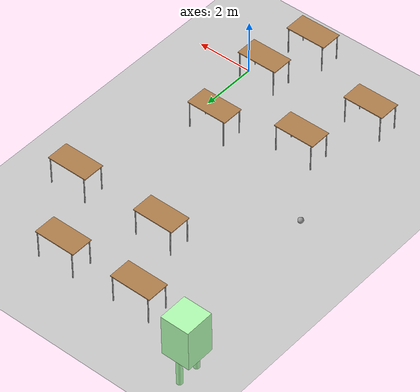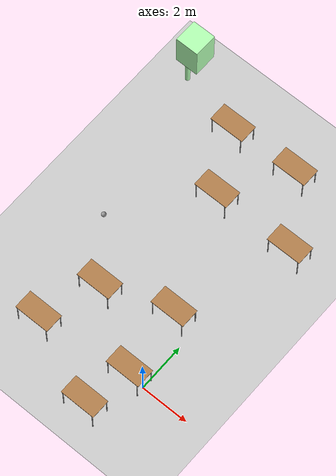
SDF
<sdf version="1.6">
 <world name="default">
  <model name="ground_plane">
   <static>1</static>
   <link name="link">
    <collision name="collision">
     <geometry><plane><normal>0 0 1</normal><size>100 100</size></plane></geometry>
     <surface><friction><ode><mu>100</mu><mu2>50</mu2></ode></friction></surface>
    </collision>
    <visual name="visual">
     <cast_shadows>0</cast_shadows>
     <geometry><plane><normal>0 0 1</normal><size>100 100</size></plane></geometry>
     <material>
      <script><uri>file://media/materials/scripts/gazebo.material</uri><name>Gazebo/Grey</name></script>
     </material>
    </visual>
   </link>
  </model>
  <model name="table">
   <static>1</static>
   <link name="link">
    <collision name="surface">
     <pose>0 0 1 0 -0 0</pose>
     <geometry><box><size>1.5 0.8 0.03</size></box></geometry>
     <surface><friction><ode><mu>0.6</mu><mu2>0.6</mu2></ode></friction></surface>
    </collision>
    <visual name="visual1">
     <pose>0 0 1 0 -0 0</pose>
     <geometry><box><size>1.5 0.8 0.03</size></box></geometry>
     <material>
      <script><uri>file://media/materials/scripts/gazebo.material</uri><name>Gazebo/Wood</name></script>
     </material>
    </visual>
    <collision name="front_left_leg">
     <pose>0.68 0.38 0.5 0 -0 0</pose>
     <geometry><cylinder><radius>0.02</radius><length>1</length></cylinder></geometry>
    </collision>
    <visual name="front_left_leg">
     <pose>0.68 0.38 0.5 0 -0 0</pose>
     <geometry><cylinder><radius>0.02</radius><length>1</length></cylinder></geometry>
     <material>
      <script><uri>file://media/materials/scripts/gazebo.material</uri><name>Gazebo/Grey</name></script>
     </material>
    </visual>
    <collision name="front_right_leg">
     <pose>0.68 -0.38 0.5 0 -0 0</pose>
     <geometry><cylinder><radius>0.02</radius><length>1</length></cylinder></geometry>
    </collision>
    <visual name="front_right_leg">
     <pose>0.68 -0.38 0.5 0 -0 0</pose>
     <geometry><cylinder><radius>0.02</radius><length>1</length></cylinder></geometry>
     <material>
      <script><uri>file://media/materials/scripts/gazebo.material</uri><name>Gazebo/Grey</name></script>
     </material>
    </visual>
    <collision name="back_right_leg">
     <pose>-0.68 -0.38 0.5 0 -0 0</pose>
     <geometry><cylinder><radius>0.02</radius><length>1</length></cylinder></geometry>
    </collision>
    <visual name="back_right_leg">
     <pose>-0.68 -0.38 0.5 0 -0 0</pose>
     <geometry><cylinder><radius>0.02</radius><length>1</length></cylinder></geometry>
     <material>
      <script><uri>file://media/materials/scripts/gazebo.material</uri><name>Gazebo/Grey</name></script>
     </material>
    </visual>
    <collision name="back_left_leg">
     <pose>-0.68 0.38 0.5 0 -0 0</pose>
     <geometry><cylinder><radius>0.02</radius><length>1</length></cylinder></geometry>
    </collision>
    <visual name="back_left_leg">
     <pose>-0.68 0.38 0.5 0 -0 0</pose>
     <geometry><cylinder><radius>0.02</radius><length>1</length></cylinder></geometry>
     <material>
      <script><uri>file://media/materials/scripts/gazebo.material</uri><name>Gazebo/Grey</name></script>
     </material>
    </visual>
   </link>
   <pose>-4.01505 9.79336 0 0 -0 0</pose>
  </model>
  <model name="table_0">
   <static>1</static>
   <link name="link">
    <collision name="surface">
     <pose>0 0 1 0 -0 0</pose>
     <geometry><box><size>1.5 0.8 0.03</size></box></geometry>
     <surface><friction><ode><mu>0.6</mu><mu2>0.6</mu2></ode></friction></surface>
    </collision>
    <visual name="visual1">
     <pose>0 0 1 0 -0 0</pose>
     <geometry><box><size>1.5 0.8 0.03</size></box></geometry>
     <material>
      <script><uri>file://media/materials/scripts/gazebo.material</uri><name>Gazebo/Wood</name></script>
     </material>
    </visual>
    <collision name="front_left_leg">
     <pose>0.68 0.38 0.5 0 -0 0</pose>
     <geometry><cylinder><radius>0.02</radius><length>1</length></cylinder></geometry>
    </collision>
    <visual name="front_left_leg">
     <pose>0.68 0.38 0.5 0 -0 0</pose>
     <geometry><cylinder><radius>0.02</radius><length>1</length></cylinder></geometry>
     <material>
      <script><uri>file://media/materials/scripts/gazebo.material</uri><name>Gazebo/Grey</name></script>
     </material>
    </visual>
    <collision name="front_right_leg">
     <pose>0.68 -0.38 0.5 0 -0 0</pose>
     <geometry><cylinder><radius>0.02</radius><length>1</length></cylinder></geometry>
    </collision>
    <visual name="front_right_leg">
     <pose>0.68 -0.38 0.5 0 -0 0</pose>
     <geometry><cylinder><radius>0.02</radius><length>1</length></cylinder></geometry>
     <material>
      <script><uri>file://media/materials/scripts/gazebo.material</uri><name>Gazebo/Grey</name></script>
     </material>
    </visual>
    <collision name="back_right_leg">
     <pose>-0.68 -0.38 0.5 0 -0 0</pose>
     <geometry><cylinder><radius>0.02</radius><length>1</length></cylinder></geometry>
    </collision>
    <visual name="back_right_leg">
     <pose>-0.68 -0.38 0.5 0 -0 0</pose>
     <geometry><cylinder><radius>0.02</radius><length>1</length></cylinder></geometry>
     <material>
      <script><uri>file://media/materials/scripts/gazebo.material</uri><name>Gazebo/Grey</name></script>
     </material>
    </visual>
    <collision name="back_left_leg">
     <pose>-0.68 0.38 0.5 0 -0 0</pose>
     <geometry><cylinder><radius>0.02</radius><length>1</length></cylinder></geometry>
    </collision>
    <visual name="back_left_leg">
     <pose>-0.68 0.38 0.5 0 -0 0</pose>
     <geometry><cylinder><radius>0.02</radius><length>1</length></cylinder></geometry>
     <material>
      <script><uri>file://media/materials/scripts/gazebo.material</uri><name>Gazebo/Grey</name></script>
     </material>
    </visual>
   </link>
   <pose>-1.14688 9.87615 0 0 -0 0</pose>
  </model>
  <model name="table_1">
   <static>1</static>
   <link name="link">
    <collision name="surface">
     <pose>0 0 1 0 -0 0</pose>
     <geometry><box><size>1.5 0.8 0.03</size></box></geometry>
     <surface><friction><ode><mu>0.6</mu><mu2>0.6</mu2></ode></friction></surface>
    </collision>
    <visual name="visual1">
     <pose>0 0 1 0 -0 0</pose>
     <geometry><box><size>1.5 0.8 0.03</size></box></geometry>
     <material>
      <script><uri>file://media/materials/scripts/gazebo.material</uri><name>Gazebo/Wood</name></script>
     </material>
    </visual>
    <collision name="front_left_leg">
     <pose>0.68 0.38 0.5 0 -0 0</pose>
     <geometry><cylinder><radius>0.02</radius><length>1</length></cylinder></geometry>
    </collision>
    <visual name="front_left_leg">
     <pose>0.68 0.38 0.5 0 -0 0</pose>
     <geometry><cylinder><radius>0.02</radius><length>1</length></cylinder></geometry>
     <material>
      <script><uri>file://media/materials/scripts/gazebo.material</uri><name>Gazebo/Grey</name></script>
     </material>
    </visual>
    <collision name="front_right_leg">
     <pose>0.68 -0.38 0.5 0 -0 0</pose>
     <geometry><cylinder><radius>0.02</radius><length>1</length></cylinder></geometry>
    </collision>
    <visual name="front_right_leg">
     <pose>0.68 -0.38 0.5 0 -0 0</pose>
     <geometry><cylinder><radius>0.02</radius><length>1</length></cylinder></geometry>
     <material>
      <script><uri>file://media/materials/scripts/gazebo.material</uri><name>Gazebo/Grey</name></script>
     </material>
    </visual>
    <collision name="back_right_leg">
     <pose>-0.68 -0.38 0.5 0 -0 0</pose>
     <geometry><cylinder><radius>0.02</radius><length>1</length></cylinder></geometry>
    </collision>
    <visual name="back_right_leg">
     <pose>-0.68 -0.38 0.5 0 -0 0</pose>
     <geometry><cylinder><radius>0.02</radius><length>1</length></cylinder></geometry>
     <material>
      <script><uri>file://media/materials/scripts/gazebo.material</uri><name>Gazebo/Grey</name></script>
     </material>
    </visual>
    <collision name="back_left_leg">
     <pose>-0.68 0.38 0.5 0 -0 0</pose>
     <geometry><cylinder><radius>0.02</radius><length>1</length></cylinder></geometry>
    </collision>
    <visual name="back_left_leg">
     <pose>-0.68 0.38 0.5 0 -0 0</pose>
     <geometry><cylinder><radius>0.02</radius><length>1</length></cylinder></geometry>
     <material>
      <script><uri>file://media/materials/scripts/gazebo.material</uri><name>Gazebo/Grey</name></script>
     </material>
    </visual>
   </link>
   <pose>-2.73953 7.35385 0 0 -0 0</pose>
  </model>
  <model name="table_2">
   <static>1</static>
   <link name="link">
    <collision name="surface">
     <pose>0 0 1 0 -0 0</pose>
     <geometry><box><size>1.5 0.8 0.03</size></box></geometry>
     <surface><friction><ode><mu>0.6</mu><mu2>0.6</mu2></ode></friction></surface>
    </collision>
    <visual name="visual1">
     <pose>0 0 1 0 -0 0</pose>
     <geometry><box><size>1.5 0.8 0.03</size></box></geometry>
     <material>
      <script><uri>file://media/materials/scripts/gazebo.material</uri><name>Gazebo/Wood</name></script>
     </material>
    </visual>
    <collision name="front_left_leg">
     <pose>0.68 0.38 0.5 0 -0 0</pose>
     <geometry><cylinder><radius>0.02</radius><length>1</length></cylinder></geometry>
    </collision>
    <visual name="front_left_leg">
     <pose>0.68 0.38 0.5 0 -0 0</pose>
     <geometry><cylinder><radius>0.02</radius><length>1</length></cylinder></geometry>
     <material>
      <script><uri>file://media/materials/scripts/gazebo.material</uri><name>Gazebo/Grey</name></script>
     </material>
    </visual>
    <collision name="front_right_leg">
     <pose>0.68 -0.38 0.5 0 -0 0</pose>
     <geometry><cylinder><radius>0.02</radius><length>1</length></cylinder></geometry>
    </collision>
    <visual name="front_right_leg">
     <pose>0.68 -0.38 0.5 0 -0 0</pose>
     <geometry><cylinder><radius>0.02</radius><length>1</length></cylinder></geometry>
     <material>
      <script><uri>file://media/materials/scripts/gazebo.material</uri><name>Gazebo/Grey</name></script>
     </material>
    </visual>
    <collision name="back_right_leg">
     <pose>-0.68 -0.38 0.5 0 -0 0</pose>
     <geometry><cylinder><radius>0.02</radius><length>1</length></cylinder></geometry>
    </collision>
    <visual name="back_right_leg">
     <pose>-0.68 -0.38 0.5 0 -0 0</pose>
     <geometry><cylinder><radius>0.02</radius><length>1</length></cylinder></geometry>
     <material>
      <script><uri>file://media/materials/scripts/gazebo.material</uri><name>Gazebo/Grey</name></script>
     </material>
    </visual>
    <collision name="back_left_leg">
     <pose>-0.68 0.38 0.5 0 -0 0</pose>
     <geometry><cylinder><radius>0.02</radius><length>1</length></cylinder></geometry>
    </collision>
    <visual name="back_left_leg">
     <pose>-0.68 0.38 0.5 0 -0 0</pose>
     <geometry><cylinder><radius>0.02</radius><length>1</length></cylinder></geometry>
     <material>
      <script><uri>file://media/materials/scripts/gazebo.material</uri><name>Gazebo/Grey</name></script>
     </material>
    </visual>
   </link>
   <pose>0.676535 7.34865 0 0 -0 0</pose>
  </model>
  <model name="table_3">
   <static>1</static>
   <link name="link">
    <collision name="surface">
     <pose>0 0 1 0 -0 0</pose>
     <geometry><box><size>1.5 0.8 0.03</size></box></geometry>
     <surface><friction><ode><mu>0.6</mu><mu2>0.6</mu2></ode></friction></surface>
    </collision>
    <visual name="visual1">
     <pose>0 0 1 0 -0 0</pose>
     <geometry><box><size>1.5 0.8 0.03</size></box></geometry>
     <material>
      <script><uri>file://media/materials/scripts/gazebo.material</uri><name>Gazebo/Wood</name></script>
     </material>
    </visual>
    <collision name="front_left_leg">
     <pose>0.68 0.38 0.5 0 -0 0</pose>
     <geometry><cylinder><radius>0.02</radius><length>1</length></cylinder></geometry>
    </collision>
    <visual name="front_left_leg">
     <pose>0.68 0.38 0.5 0 -0 0</pose>
     <geometry><cylinder><radius>0.02</radius><length>1</length></cylinder></geometry>
     <material>
      <script><uri>file://media/materials/scripts/gazebo.material</uri><name>Gazebo/Grey</name></script>
     </material>
    </visual>
    <collision name="front_right_leg">
     <pose>0.68 -0.38 0.5 0 -0 0</pose>
     <geometry><cylinder><radius>0.02</radius><length>1</length></cylinder></geometry>
    </collision>
    <visual name="front_right_leg">
     <pose>0.68 -0.38 0.5 0 -0 0</pose>
     <geometry><cylinder><radius>0.02</radius><length>1</length></cylinder></geometry>
     <material>
      <script><uri>file://media/materials/scripts/gazebo.material</uri><name>Gazebo/Grey</name></script>
     </material>
    </visual>
    <collision name="back_right_leg">
     <pose>-0.68 -0.38 0.5 0 -0 0</pose>
     <geometry><cylinder><radius>0.02</radius><length>1</length></cylinder></geometry>
    </collision>
    <visual name="back_right_leg">
     <pose>-0.68 -0.38 0.5 0 -0 0</pose>
     <geometry><cylinder><radius>0.02</radius><length>1</length></cylinder></geometry>
     <material>
      <script><uri>file://media/materials/scripts/gazebo.material</uri><name>Gazebo/Grey</name></script>
     </material>
    </visual>
    <collision name="back_left_leg">
     <pose>-0.68 0.38 0.5 0 -0 0</pose>
     <geometry><cylinder><radius>0.02</radius><length>1</length></cylinder></geometry>
    </collision>
    <visual name="back_left_leg">
     <pose>-0.68 0.38 0.5 0 -0 0</pose>
     <geometry><cylinder><radius>0.02</radius><length>1</length></cylinder></geometry>
     <material>
      <script><uri>file://media/materials/scripts/gazebo.material</uri><name>Gazebo/Grey</name></script>
     </material>
    </visual>
   </link>
   <pose>-0.919564 2.77601 0 0 -0 0</pose>
  </model>
  <model name="table_4">
   <static>1</static>
   <link name="link">
    <collision name="surface">
     <pose>0 0 1 0 -0 0</pose>
     <geometry><box><size>1.5 0.8 0.03</size></box></geometry>
     <surface><friction><ode><mu>0.6</mu><mu2>0.6</mu2></ode></friction></surface>
    </collision>
    <visual name="visual1">
     <pose>0 0 1 0 -0 0</pose>
     <geometry><box><size>1.5 0.8 0.03</size></box></geometry>
     <material>
      <script><uri>file://media/materials/scripts/gazebo.material</uri><name>Gazebo/Wood</name></script>
     </material>
    </visual>
    <collision name="front_left_leg">
     <pose>0.68 0.38 0.5 0 -0 0</pose>
     <geometry><cylinder><radius>0.02</radius><length>1</length></cylinder></geometry>
    </collision>
    <visual name="front_left_leg">
     <pose>0.68 0.38 0.5 0 -0 0</pose>
     <geometry><cylinder><radius>0.02</radius><length>1</length></cylinder></geometry>
     <material>
      <script><uri>file://media/materials/scripts/gazebo.material</uri><name>Gazebo/Grey</name></script>
     </material>
    </visual>
    <collision name="front_right_leg">
     <pose>0.68 -0.38 0.5 0 -0 0</pose>
     <geometry><cylinder><radius>0.02</radius><length>1</length></cylinder></geometry>
    </collision>
    <visual name="front_right_leg">
     <pose>0.68 -0.38 0.5 0 -0 0</pose>
     <geometry><cylinder><radius>0.02</radius><length>1</length></cylinder></geometry>
     <material>
      <script><uri>file://media/materials/scripts/gazebo.material</uri><name>Gazebo/Grey</name></script>
     </material>
    </visual>
    <collision name="back_right_leg">
     <pose>-0.68 -0.38 0.5 0 -0 0</pose>
     <geometry><cylinder><radius>0.02</radius><length>1</length></cylinder></geometry>
    </collision>
    <visual name="back_right_leg">
     <pose>-0.68 -0.38 0.5 0 -0 0</pose>
     <geometry><cylinder><radius>0.02</radius><length>1</length></cylinder></geometry>
     <material>
      <script><uri>file://media/materials/scripts/gazebo.material</uri><name>Gazebo/Grey</name></script>
     </material>
    </visual>
    <collision name="back_left_leg">
     <pose>-0.68 0.38 0.5 0 -0 0</pose>
     <geometry><cylinder><radius>0.02</radius><length>1</length></cylinder></geometry>
    </collision>
    <visual name="back_left_leg">
     <pose>-0.68 0.38 0.5 0 -0 0</pose>
     <geometry><cylinder><radius>0.02</radius><length>1</length></cylinder></geometry>
     <material>
      <script><uri>file://media/materials/scripts/gazebo.material</uri><name>Gazebo/Grey</name></script>
     </material>
    </visual>
   </link>
   <pose>-4.45906 -0.485372 0 0 -0 0</pose>
  </model>
  <model name="table_5">
   <static>1</static>
   <link name="link">
    <collision name="surface">
     <pose>0 0 1 0 -0 0</pose>
     <geometry><box><size>1.5 0.8 0.03</size></box></geometry>
     <surface><friction><ode><mu>0.6</mu><mu2>0.6</mu2></ode></friction></surface>
    </collision>
    <visual name="visual1">
     <pose>0 0 1 0 -0 0</pose>
     <geometry><box><size>1.5 0.8 0.03</size></box></geometry>
     <material>
      <script><uri>file://media/materials/scripts/gazebo.material</uri><name>Gazebo/Wood</name></script>
     </material>
    </visual>
    <collision name="front_left_leg">
     <pose>0.68 0.38 0.5 0 -0 0</pose>
     <geometry><cylinder><radius>0.02</radius><length>1</length></cylinder></geometry>
    </collision>
    <visual name="front_left_leg">
     <pose>0.68 0.38 0.5 0 -0 0</pose>
     <geometry><cylinder><radius>0.02</radius><length>1</length></cylinder></geometry>
     <material>
      <script><uri>file://media/materials/scripts/gazebo.material</uri><name>Gazebo/Grey</name></script>
     </material>
    </visual>
    <collision name="front_right_leg">
     <pose>0.68 -0.38 0.5 0 -0 0</pose>
     <geometry><cylinder><radius>0.02</radius><length>1</length></cylinder></geometry>
    </collision>
    <visual name="front_right_leg">
     <pose>0.68 -0.38 0.5 0 -0 0</pose>
     <geometry><cylinder><radius>0.02</radius><length>1</length></cylinder></geometry>
     <material>
      <script><uri>file://media/materials/scripts/gazebo.material</uri><name>Gazebo/Grey</name></script>
     </material>
    </visual>
    <collision name="back_right_leg">
     <pose>-0.68 -0.38 0.5 0 -0 0</pose>
     <geometry><cylinder><radius>0.02</radius><length>1</length></cylinder></geometry>
    </collision>
    <visual name="back_right_leg">
     <pose>-0.68 -0.38 0.5 0 -0 0</pose>
     <geometry><cylinder><radius>0.02</radius><length>1</length></cylinder></geometry>
     <material>
      <script><uri>file://media/materials/scripts/gazebo.material</uri><name>Gazebo/Grey</name></script>
     </material>
    </visual>
    <collision name="back_left_leg">
     <pose>-0.68 0.38 0.5 0 -0 0</pose>
     <geometry><cylinder><radius>0.02</radius><length>1</length></cylinder></geometry>
    </collision>
    <visual name="back_left_leg">
     <pose>-0.68 0.38 0.5 0 -0 0</pose>
     <geometry><cylinder><radius>0.02</radius><length>1</length></cylinder></geometry>
     <material>
      <script><uri>file://media/materials/scripts/gazebo.material</uri><name>Gazebo/Grey</name></script>
     </material>
    </visual>
   </link>
   <pose>-3.62568 1.87199 0 0 -0 0</pose>
  </model>
  <model name="table_6">
   <static>1</static>
   <link name="link">
    <collision name="surface">
     <pose>0 0 1 0 -0 0</pose>
     <geometry><box><size>1.5 0.8 0.03</size></box></geometry>
     <surface><friction><ode><mu>0.6</mu><mu2>0.6</mu2></ode></friction></surface>
    </collision>
    <visual name="visual1">
     <pose>0 0 1 0 -0 0</pose>
     <geometry><box><size>1.5 0.8 0.03</size></box></geometry>
     <material>
      <script><uri>file://media/materials/scripts/gazebo.material</uri><name>Gazebo/Wood</name></script>
     </material>
    </visual>
    <collision name="front_left_leg">
     <pose>0.68 0.38 0.5 0 -0 0</pose>
     <geometry><cylinder><radius>0.02</radius><length>1</length></cylinder></geometry>
    </collision>
    <visual name="front_left_leg">
     <pose>0.68 0.38 0.5 0 -0 0</pose>
     <geometry><cylinder><radius>0.02</radius><length>1</length></cylinder></geometry>
     <material>
      <script><uri>file://media/materials/scripts/gazebo.material</uri><name>Gazebo/Grey</name></script>
     </material>
    </visual>
    <collision name="front_right_leg">
     <pose>0.68 -0.38 0.5 0 -0 0</pose>
     <geometry><cylinder><radius>0.02</radius><length>1</length></cylinder></geometry>
    </collision>
    <visual name="front_right_leg">
     <pose>0.68 -0.38 0.5 0 -0 0</pose>
     <geometry><cylinder><radius>0.02</radius><length>1</length></cylinder></geometry>
     <material>
      <script><uri>file://media/materials/scripts/gazebo.material</uri><name>Gazebo/Grey</name></script>
     </material>
    </visual>
    <collision name="back_right_leg">
     <pose>-0.68 -0.38 0.5 0 -0 0</pose>
     <geometry><cylinder><radius>0.02</radius><length>1</length></cylinder></geometry>
    </collision>
    <visual name="back_right_leg">
     <pose>-0.68 -0.38 0.5 0 -0 0</pose>
     <geometry><cylinder><radius>0.02</radius><length>1</length></cylinder></geometry>
     <material>
      <script><uri>file://media/materials/scripts/gazebo.material</uri><name>Gazebo/Grey</name></script>
     </material>
    </visual>
    <collision name="back_left_leg">
     <pose>-0.68 0.38 0.5 0 -0 0</pose>
     <geometry><cylinder><radius>0.02</radius><length>1</length></cylinder></geometry>
    </collision>
    <visual name="back_left_leg">
     <pose>-0.68 0.38 0.5 0 -0 0</pose>
     <geometry><cylinder><radius>0.02</radius><length>1</length></cylinder></geometry>
     <material>
      <script><uri>file://media/materials/scripts/gazebo.material</uri><name>Gazebo/Grey</name></script>
     </material>
    </visual>
   </link>
   <pose>-0.637291 0.015745 0 0 -0 0</pose>
  </model>
  <model name="table_7">
   <static>1</static>
   <link name="link">
    <collision name="surface">
     <pose>0 0 1 0 -0 0</pose>
     <geometry><box><size>1.5 0.8 0.03</size></box></geometry>
     <surface><friction><ode><mu>0.6</mu><mu2>0.6</mu2></ode></friction></surface>
    </collision>
    <visual name="visual1">
     <pose>0 0 1 0 -0 0</pose>
     <geometry><box><size>1.5 0.8 0.03</size></box></geometry>
     <material>
      <script><uri>file://media/materials/scripts/gazebo.material</uri><name>Gazebo/Wood</name></script>
     </material>
    </visual>
    <collision name="front_left_leg">
     <pose>0.68 0.38 0.5 0 -0 0</pose>
     <geometry><cylinder><radius>0.02</radius><length>1</length></cylinder></geometry>
    </collision>
    <visual name="front_left_leg">
     <pose>0.68 0.38 0.5 0 -0 0</pose>
     <geometry><cylinder><radius>0.02</radius><length>1</length></cylinder></geometry>
     <material>
      <script><uri>file://media/materials/scripts/gazebo.material</uri><name>Gazebo/Grey</name></script>
     </material>
    </visual>
    <collision name="front_right_leg">
     <pose>0.68 -0.38 0.5 0 -0 0</pose>
     <geometry><cylinder><radius>0.02</radius><length>1</length></cylinder></geometry>
    </collision>
    <visual name="front_right_leg">
     <pose>0.68 -0.38 0.5 0 -0 0</pose>
     <geometry><cylinder><radius>0.02</radius><length>1</length></cylinder></geometry>
     <material>
      <script><uri>file://media/materials/scripts/gazebo.material</uri><name>Gazebo/Grey</name></script>
     </material>
    </visual>
    <collision name="back_right_leg">
     <pose>-0.68 -0.38 0.5 0 -0 0</pose>
     <geometry><cylinder><radius>0.02</radius><length>1</length></cylinder></geometry>
    </collision>
    <visual name="back_right_leg">
     <pose>-0.68 -0.38 0.5 0 -0 0</pose>
     <geometry><cylinder><radius>0.02</radius><length>1</length></cylinder></geometry>
     <material>
      <script><uri>file://media/materials/scripts/gazebo.material</uri><name>Gazebo/Grey</name></script>
     </material>
    </visual>
    <collision name="back_left_leg">
     <pose>-0.68 0.38 0.5 0 -0 0</pose>
     <geometry><cylinder><radius>0.02</radius><length>1</length></cylinder></geometry>
    </collision>
    <visual name="back_left_leg">
     <pose>-0.68 0.38 0.5 0 -0 0</pose>
     <geometry><cylinder><radius>0.02</radius><length>1</length></cylinder></geometry>
     <material>
      <script><uri>file://media/materials/scripts/gazebo.material</uri><name>Gazebo/Grey</name></script>
     </material>
    </visual>
   </link>
   <pose>-1.08143 -1.86938 0 0 -0 0</pose>
  </model>
  <model name="NewRobot_0">
   <link name="link_0">
    <pose>0.006667 0.013333 0.833333 0 -0 0</pose>
    <inertial>
     <mass>1</mass>
     <inertia>
      <ixx>0.166667</ixx>
      <ixy>0</ixy>
      <ixz>0</ixz>
      <iyy>0.166667</iyy>
      <iyz>0</iyz>
      <izz>0.166667</izz>
     </inertia>
    </inertial>
    <visual name="visual">
     <geometry><box><size>1 1 1.5</size></box></geometry>
     <material>
      <lighting>1</lighting>
      <script><uri>file://media/materials/scripts/gazebo.material</uri><name>Gazebo/Grey</name></script>
      <shader type="pixel"><normal_map>__default__</normal_map></shader>
      <ambient>0.3 0.3 0.3 1</ambient>
      <diffuse>0.7 1 0.7 1</diffuse>
      <specular>0.01 1 0.01 1</specular>
      <emissive>0 0 0 1</emissive>
     </material>
    </visual>
    <collision name="collision">
     <geometry><box><size>1 1 1.5</size></box></geometry>
     <surface>
      <friction>
       <ode><mu>1</mu><mu2>1</mu2><fdir1>0 0 0</fdir1><slip1>0</slip1><slip2>0</slip2></ode>
       <torsional>
        <coefficient>1</coefficient>
        <patch_radius>0</patch_radius>
        <surface_radius>0</surface_radius>
        <use_patch_radius>1</use_patch_radius>
        <ode><slip>0</slip></ode>
       </torsional>
      </friction>
      <bounce><restitution_coefficient>0</restitution_coefficient><threshold>1e+06</threshold></bounce>
      <contact>
       <collide_without_contact>0</collide_without_contact>
       <collide_without_contact_bitmask>1</collide_without_contact_bitmask>
       <collide_bitmask>1</collide_bitmask>
       <ode>
        <soft_cfm>0</soft_cfm>
        <soft_erp>0.2</soft_erp>
        <kp>1e+13</kp>
        <kd>1</kd>
        <max_vel>0.01</max_vel>
        <min_depth>0</min_depth>
       </ode>
       <bullet>
        <split_impulse>1</split_impulse>
        <split_impulse_penetration_threshold>-0.01</split_impulse_penetration_threshold>
        <soft_cfm>0</soft_cfm>
        <soft_erp>0.2</soft_erp>
        <kp>1e+13</kp>
        <kd>1</kd>
       </bullet>
      </contact>
     </surface>
    </collision>
   </link>
   <link name="link_1">
    <pose>-0.013333 0.373333 -0.416667 0 -0 0</pose>
    <inertial>
     <mass>1</mass>
     <inertia><ixx>0.145833</ixx><ixy>0</ixy><ixz>0</ixz><iyy>0.145833</iyy><iyz>0</iyz><izz>0.125</izz></inertia>
    </inertial>
    <visual name="visual">
     <geometry><cylinder><radius>0.1</radius><length>1</length></cylinder></geometry>
     <material>
      <lighting>1</lighting>
      <script><uri>file://media/materials/scripts/gazebo.material</uri><name>Gazebo/Grey</name></script>
      <shader type="pixel"><normal_map>__default__</normal_map></shader>
      <ambient>0.3 0.3 0.7 1</ambient>
      <diffuse>0.7 1 0.7 1</diffuse>
      <specular>0.01 1 0.5 1</specular>
      <emissive>0 1 0 1</emissive>
     </material>
    </visual>
    <collision name="collision">
     <geometry><cylinder><radius>0.1</radius><length>1</length></cylinder></geometry>
     <surface>
      <friction>
       <ode><mu>1</mu><mu2>1</mu2><fdir1>0 0 0</fdir1><slip1>0</slip1><slip2>0</slip2></ode>
       <torsional>
        <coefficient>1</coefficient>
        <patch_radius>0</patch_radius>
        <surface_radius>0</surface_radius>
        <use_patch_radius>1</use_patch_radius>
        <ode><slip>0</slip></ode>
       </torsional>
      </friction>
      <bounce><restitution_coefficient>0</restitution_coefficient><threshold>1e+06</threshold></bounce>
      <contact>
       <collide_without_contact>0</collide_without_contact>
       <collide_without_contact_bitmask>1</collide_without_contact_bitmask>
       <collide_bitmask>1</collide_bitmask>
       <ode>
        <soft_cfm>0</soft_cfm>
        <soft_erp>0.2</soft_erp>
        <kp>1e+13</kp>
        <kd>1</kd>
        <max_vel>0.01</max_vel>
        <min_depth>0</min_depth>
       </ode>
       <bullet>
        <split_impulse>1</split_impulse>
        <split_impulse_penetration_threshold>-0.01</split_impulse_penetration_threshold>
        <soft_cfm>0</soft_cfm>
        <soft_erp>0.2</soft_erp>
        <kp>1e+13</kp>
        <kd>1</kd>
       </bullet>
      </contact>
     </surface>
    </collision>
   </link>
   <link name="link_1_clone">
    <pose>0.006667 -0.386667 -0.416667 0 -0 0</pose>
    <inertial>
     <mass>1</mass>
     <inertia><ixx>0.145833</ixx><ixy>0</ixy><ixz>0</ixz><iyy>0.145833</iyy><iyz>0</iyz><izz>0.125</izz></inertia>
    </inertial>
    <visual name="visual">
     <geometry><cylinder><radius>0.1</radius><length>1</length></cylinder></geometry>
     <material>
      <lighting>1</lighting>
      <script><uri>file://media/materials/scripts/gazebo.material</uri><name>Gazebo/Grey</name></script>
      <shader type="pixel"><normal_map>__default__</normal_map></shader>
      <ambient>0.3 0.3 0.7 1</ambient>
      <diffuse>0.7 1 0.7 1</diffuse>
      <specular>0.01 1 0.5 1</specular>
      <emissive>0 0 0 1</emissive>
     </material>
    </visual>
    <collision name="collision">
     <geometry><cylinder><radius>0.1</radius><length>1</length></cylinder></geometry>
     <surface>
      <friction>
       <ode><mu>1</mu><mu2>1</mu2><fdir1>0 0 0</fdir1><slip1>0</slip1><slip2>0</slip2></ode>
       <torsional>
        <coefficient>1</coefficient>
        <patch_radius>0</patch_radius>
        <surface_radius>0</surface_radius>
        <use_patch_radius>1</use_patch_radius>
        <ode><slip>0</slip></ode>
       </torsional>
      </friction>
      <bounce><restitution_coefficient>0</restitution_coefficient><threshold>1e+06</threshold></bounce>
      <contact>
       <collide_without_contact>0</collide_without_contact>
       <collide_without_contact_bitmask>1</collide_without_contact_bitmask>
       <collide_bitmask>1</collide_bitmask>
       <ode>
        <soft_cfm>0</soft_cfm>
        <soft_erp>0.2</soft_erp>
        <kp>1e+13</kp>
        <kd>1</kd>
        <max_vel>0.01</max_vel>
        <min_depth>0</min_depth>
       </ode>
       <bullet>
        <split_impulse>1</split_impulse>
        <split_impulse_penetration_threshold>-0.01</split_impulse_penetration_threshold>
        <soft_cfm>0</soft_cfm>
        <soft_erp>0.2</soft_erp>
        <kp>1e+13</kp>
        <kd>1</kd>
       </bullet>
      </contact>
     </surface>
    </collision>
   </link>
   <joint name="link_0_JOINT_0" type="revolute">
    <parent>link_0</parent>
    <child>link_1</child>
    <axis>
     <xyz>1 0 0</xyz>
     <use_parent_model_frame>0</use_parent_model_frame>
     <limit>
      <lower>-1.79769e+308</lower>
      <upper>1.79769e+308</upper>
      <effort>-1</effort>
      <velocity>-1</velocity>
     </limit>
     <dynamics>
      <spring_reference>0</spring_reference>
      <spring_stiffness>0</spring_stiffness>
      <damping>0</damping>
      <friction>0</friction>
     </dynamics>
    </axis>
    <physics>
     <ode><limit><cfm>0</cfm><erp>0.2</erp></limit><suspension><cfm>0</cfm><erp>0.2</erp></suspension></ode>
    </physics>
   </joint>
   <joint name="link_0_JOINT_1" type="revolute">
    <parent>link_0</parent>
    <child>link_1_clone</child>
    <axis>
     <xyz>1 0 0</xyz>
     <use_parent_model_frame>0</use_parent_model_frame>
     <limit>
      <lower>-1.79769e+308</lower>
      <upper>1.79769e+308</upper>
      <effort>-1</effort>
      <velocity>-1</velocity>
     </limit>
     <dynamics>
      <spring_reference>0</spring_reference>
      <spring_stiffness>0</spring_stiffness>
      <damping>0</damping>
     </dynamics>
    </axis>
    <physics>
     <ode><limit><cfm>0</cfm><erp>0.2</erp></limit><suspension><cfm>0</cfm><erp>0.2</erp></suspension></ode>
    </physics>
   </joint>
   <static>0</static>
   <pose>-6.85044 10.9533 0.920535 -0.010428 2e-06 -0.00366</pose>
  </model>
  <model name="my_ball">
   <link name="link_0">
    <inertial>
     <mass>1</mass>
     <inertia><ixx>0.1</ixx><ixy>0</ixy><ixz>0</ixz><iyy>0.1</iyy><iyz>0</iyz><izz>0.1</izz></inertia>
    </inertial>
    <visual name="visual">
     <geometry><sphere><radius>0.1</radius></sphere></geometry>
     <material>
      <lighting>1</lighting>
      <script><uri>file://media/materials/scripts/gazebo.material</uri><name>Gazebo/Grey</name></script>
      <shader type="pixel"><normal_map>__default__</normal_map></shader>
      <ambient>1 1 1 1</ambient>
      <diffuse>1 1 1 1</diffuse>
      <specular>1 1 1 1</specular>
      <emissive>1 1 1 1</emissive>
     </material>
    </visual>
    <collision name="collision">
     <geometry><sphere><radius>0.1</radius></sphere></geometry>
     <surface>
      <friction>
       <ode><mu>1</mu><mu2>1</mu2><fdir1>0 0 0</fdir1><slip1>0</slip1><slip2>0</slip2></ode>
       <torsional>
        <coefficient>1</coefficient>
        <patch_radius>0</patch_radius>
        <surface_radius>0</surface_radius>
        <use_patch_radius>1</use_patch_radius>
        <ode><slip>0</slip></ode>
       </torsional>
      </friction>
      <bounce><restitution_coefficient>0</restitution_coefficient><threshold>1e+06</threshold></bounce>
      <contact>
       <collide_without_contact>0</collide_without_contact>
       <collide_without_contact_bitmask>1</collide_without_contact_bitmask>
       <collide_bitmask>1</collide_bitmask>
       <ode>
        <soft_cfm>0</soft_cfm>
        <soft_erp>0.2</soft_erp>
        <kp>1e+13</kp>
        <kd>1</kd>
        <max_vel>0.01</max_vel>
        <min_depth>0</min_depth>
       </ode>
       <bullet>
        <split_impulse>1</split_impulse>
        <split_impulse_penetration_threshold>-0.01</split_impulse_penetration_threshold>
        <soft_cfm>0</soft_cfm>
        <soft_erp>0.2</soft_erp>
        <kp>1e+13</kp>
        <kd>1</kd>
       </bullet>
      </contact>
     </surface>
    </collision>
   </link>
   <static>0</static>
   <pose>-5.49984 4.20361 0.1 0 -0 0</pose>
  </model>
 </world>
</sdf>
